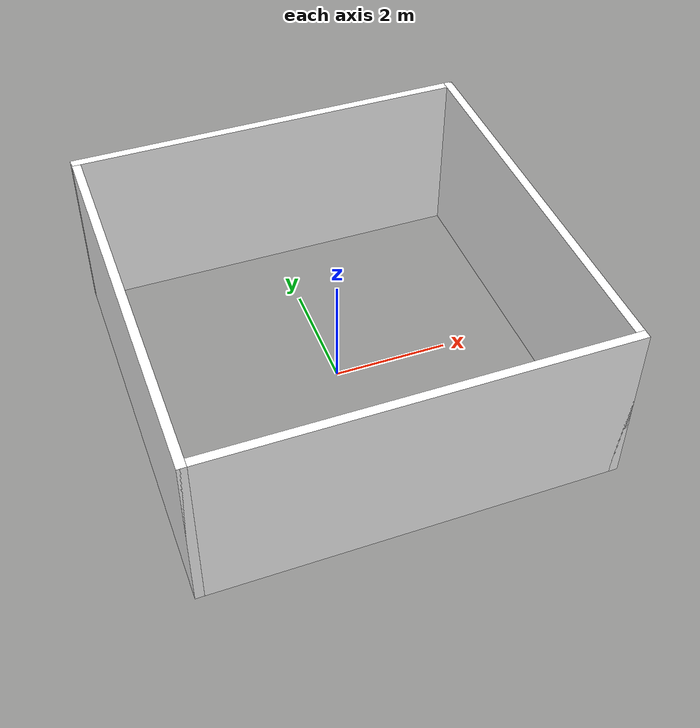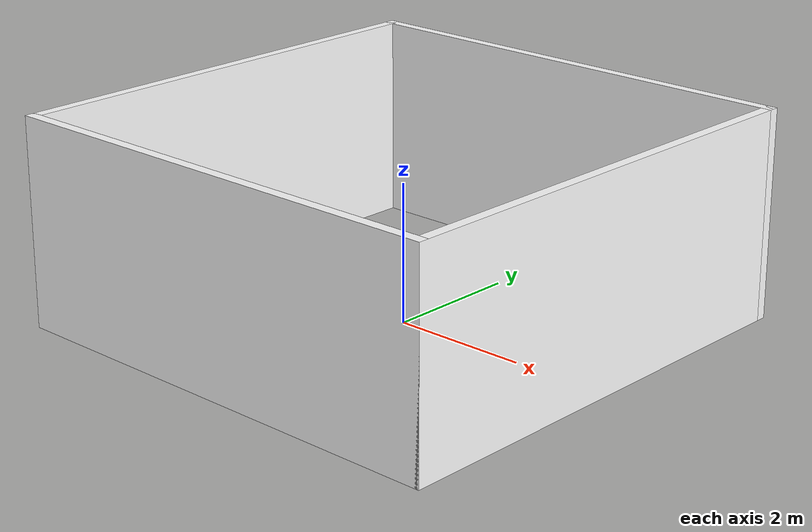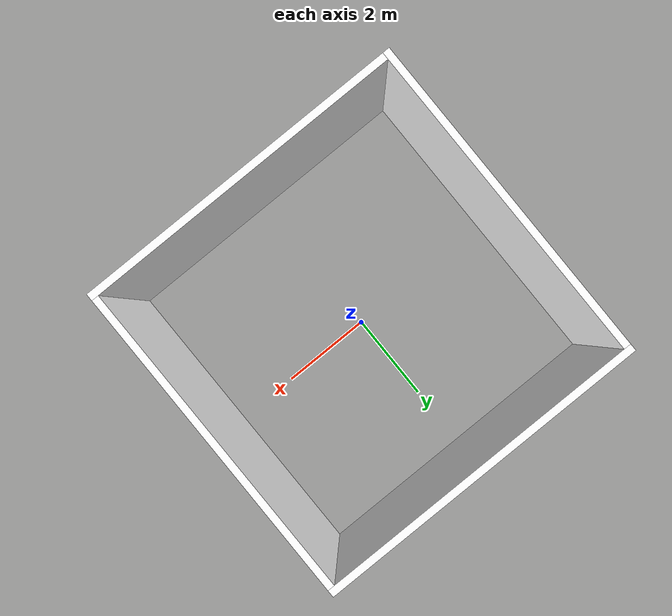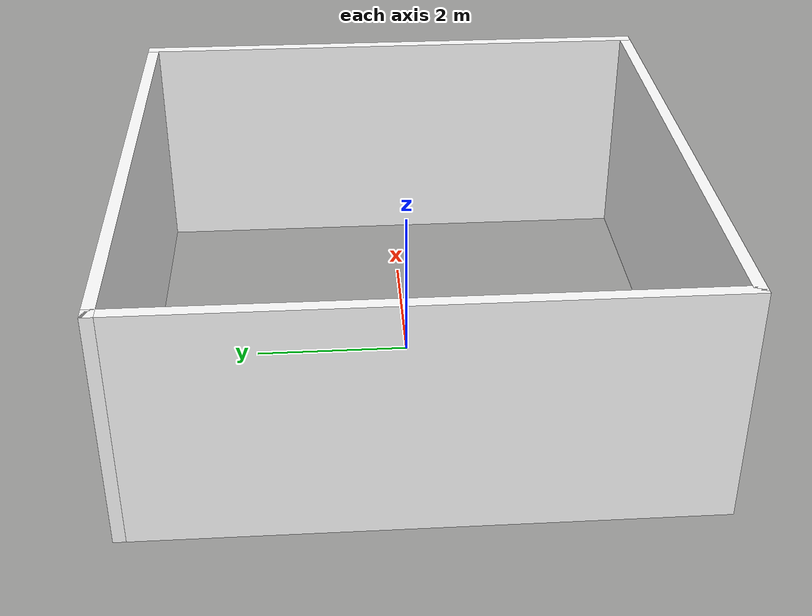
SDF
<?xml version='1.0'?>
<sdf version='1.6'>
  <model name='turtlebot3_square10'>
    <link name='Wall_0'>
      <pose frame=''>0 3.425 0 0 -0 0</pose>
      <self_collide>0</self_collide>
      <kinematic>0</kinematic>
      <gravity>1</gravity>
      <inertial>
        <mass>1</mass>
        <pose frame=''>0 0 0 0 -0 0</pose>
        <inertia>
          <ixx>1</ixx>
          <ixy>0</ixy>
          <ixz>0</ixz>
          <iyy>1</iyy>
          <iyz>0</iyz>
          <izz>1</izz>
        </inertia>
      </inertial>
      <visual name='Wall_0_Visual'>
        <pose frame=''>0 0 1.5 0 -0 0</pose>
        <geometry>
          <box>
            <size>7 0.15 3</size>
          </box>
        </geometry>
        <material>
          <script>
            <uri>model://turtlebot3_square10/materials/scripts</uri>
            <uri>model://turtlebot3_square10/materials/textures</uri>
            <name>BrickBox/Diffuse</name>
          </script>
          <ambient>1 1 1 1</ambient>
          <shader type='pixel'>
            <normal_map>__default__</normal_map>
          </shader>
          <diffuse>1 1 1 1</diffuse>
          <specular>0.2 0.2 0.2 1</specular>
          <emissive>0 0 0 1</emissive>
        </material>
        <transparency>0</transparency>
        <cast_shadows>1</cast_shadows>
      </visual>
      <collision name='Wall_0_Collision'>
        <laser_retro>0</laser_retro>
        <max_contacts>10</max_contacts>
        <pose frame=''>0 0 1.5 0 -0 0</pose>
        <geometry>
          <box>
            <size>7 0.15 3</size>
          </box>
        </geometry>
        <surface>
          <friction>
            <ode>
              <mu>1</mu>
              <mu2>1</mu2>
              <fdir1>0 0 0</fdir1>
              <slip1>0</slip1>
              <slip2>0</slip2>
            </ode>
            <torsional>
              <coefficient>1</coefficient>
              <patch_radius>0</patch_radius>
              <surface_radius>0</surface_radius>
              <use_patch_radius>1</use_patch_radius>
              <ode>
                <slip>0</slip>
              </ode>
            </torsional>
          </friction>
          <bounce>
            <restitution_coefficient>0</restitution_coefficient>
            <threshold>1e+06</threshold>
          </bounce>
          <contact>
            <collide_without_contact>0</collide_without_contact>
            <collide_without_contact_bitmask>1</collide_without_contact_bitmask>
            <collide_bitmask>1</collide_bitmask>
            <ode>
              <soft_cfm>0</soft_cfm>
              <soft_erp>0.2</soft_erp>
              <kp>1e+13</kp>
              <kd>1</kd>
              <max_vel>0.01</max_vel>
              <min_depth>0</min_depth>
            </ode>
            <bullet>
              <split_impulse>1</split_impulse>
              <split_impulse_penetration_threshold>-0.01</split_impulse_penetration_threshold>
              <soft_cfm>0</soft_cfm>
              <soft_erp>0.2</soft_erp>
              <kp>1e+13</kp>
              <kd>1</kd>
            </bullet>
          </contact>
        </surface>
      </collision>
    </link>
    <link name='Wall_2'>
      <pose frame=''>-3.425 0 0 0 0 -1.5708</pose>
      <self_collide>0</self_collide>
      <kinematic>0</kinematic>
      <gravity>1</gravity>
      <inertial>
        <mass>1</mass>
        <pose frame=''>0 0 0 0 -0 0</pose>
        <inertia>
          <ixx>1</ixx>
          <ixy>0</ixy>
          <ixz>0</ixz>
          <iyy>1</iyy>
          <iyz>0</iyz>
          <izz>1</izz>
        </inertia>
      </inertial>
      <visual name='Wall_2_Visual'>
        <pose frame=''>0 0 1.5 0 -0 0</pose>
        <geometry>
          <box>
            <size>7 0.15 3</size>
          </box>
        </geometry>
        <material>
         <script>
            <uri>model://turtlebot3_square10/materials/scripts</uri>
            <uri>model://turtlebot3_square10/materials/textures</uri>
            <name>BrickBox1/Diffuse</name>
          </script>
          <ambient>1 1 1 1</ambient>
          <shader type='pixel'>
            <normal_map>__default__</normal_map>
          </shader>
          <diffuse>1 1 1 1</diffuse>
          <specular>0.2 0.2 0.2 1</specular>
          <emissive>0 0 0 1</emissive>
        </material>
        <transparency>0</transparency>
        <cast_shadows>1</cast_shadows>
      </visual>
      <collision name='Wall_2_Collision'>
        <laser_retro>0</laser_retro>
        <max_contacts>10</max_contacts>
        <pose frame=''>0 0 1.5 0 -0 0</pose>
        <geometry>
          <box>
            <size>7 0.15 3</size>
          </box>
        </geometry>
        <surface>
          <friction>
            <ode>
              <mu>1</mu>
              <mu2>1</mu2>
              <fdir1>0 0 0</fdir1>
              <slip1>0</slip1>
              <slip2>0</slip2>
            </ode>
            <torsional>
              <coefficient>1</coefficient>
              <patch_radius>0</patch_radius>
              <surface_radius>0</surface_radius>
              <use_patch_radius>1</use_patch_radius>
              <ode>
                <slip>0</slip>
              </ode>
            </torsional>
          </friction>
          <bounce>
            <restitution_coefficient>0</restitution_coefficient>
            <threshold>1e+06</threshold>
          </bounce>
          <contact>
            <collide_without_contact>0</collide_without_contact>
            <collide_without_contact_bitmask>1</collide_without_contact_bitmask>
            <collide_bitmask>1</collide_bitmask>
            <ode>
              <soft_cfm>0</soft_cfm>
              <soft_erp>0.2</soft_erp>
              <kp>1e+13</kp>
              <kd>1</kd>
              <max_vel>0.01</max_vel>
              <min_depth>0</min_depth>
            </ode>
            <bullet>
              <split_impulse>1</split_impulse>
              <split_impulse_penetration_threshold>-0.01</split_impulse_penetration_threshold>
              <soft_cfm>0</soft_cfm>
              <soft_erp>0.2</soft_erp>
              <kp>1e+13</kp>
              <kd>1</kd>
            </bullet>
          </contact>
        </surface>
      </collision>
    </link>
    <link name='Wall_3'>
      <pose frame=''>0 -3.425 0 0 -0 0</pose>
      <self_collide>0</self_collide>
      <kinematic>0</kinematic>
      <gravity>1</gravity>
      <inertial>
        <mass>1</mass>
        <pose frame=''>0 0 0 0 -0 0</pose>
        <inertia>
          <ixx>1</ixx>
          <ixy>0</ixy>
          <ixz>0</ixz>
          <iyy>1</iyy>
          <iyz>0</iyz>
          <izz>1</izz>
        </inertia>
      </inertial>
      <visual name='Wall_3_Visual'>
        <pose frame=''>0 0 1.5 0 -0 0</pose>
        <geometry>
          <box>
            <size>7 0.15 3</size>
          </box>
        </geometry>
        <material>
          <script>
            <uri>model://turtlebot3_square10/materials/scripts</uri>
            <uri>model://turtlebot3_square10/materials/textures</uri>
            <name>BrickBox2/Diffuse</name>
          </script>
          <ambient>1 1 1 0</ambient>
          <shader type='pixel'>
            <normal_map>__default__</normal_map>
          </shader>
          <diffuse>1 1 1 0</diffuse>
          <specular>0.2 0.2 0.2 0</specular>
          <emissive>0 0 0 1</emissive>
        </material>
        <transparency>0</transparency>
        <cast_shadows>1</cast_shadows>
      </visual>
      <collision name='Wall_3_Collision'>
        <laser_retro>0</laser_retro>
        <max_contacts>10</max_contacts>
        <pose frame=''>0 0 1.5 0 -0 0</pose>
        <geometry>
          <box>
            <size>7 0.15 3</size>
          </box>
        </geometry>
        <surface>
          <friction>
            <ode>
              <mu>1</mu>
              <mu2>1</mu2>
              <fdir1>0 0 0</fdir1>
              <slip1>0</slip1>
              <slip2>0</slip2>
            </ode>
            <torsional>
              <coefficient>1</coefficient>
              <patch_radius>0</patch_radius>
              <surface_radius>0</surface_radius>
              <use_patch_radius>1</use_patch_radius>
              <ode>
                <slip>0</slip>
              </ode>
            </torsional>
          </friction>
          <bounce>
            <restitution_coefficient>0</restitution_coefficient>
            <threshold>1e+06</threshold>
          </bounce>
          <contact>
            <collide_without_contact>0</collide_without_contact>
            <collide_without_contact_bitmask>1</collide_without_contact_bitmask>
            <collide_bitmask>1</collide_bitmask>
            <ode>
              <soft_cfm>0</soft_cfm>
              <soft_erp>0.2</soft_erp>
              <kp>1e+13</kp>
              <kd>1</kd>
              <max_vel>0.01</max_vel>
              <min_depth>0</min_depth>
            </ode>
            <bullet>
              <split_impulse>1</split_impulse>
              <split_impulse_penetration_threshold>-0.01</split_impulse_penetration_threshold>
              <soft_cfm>0</soft_cfm>
              <soft_erp>0.2</soft_erp>
              <kp>1e+13</kp>
              <kd>1</kd>
            </bullet>
          </contact>
        </surface>
      </collision>
    </link>
    <link name='Wall_4'>
      <pose frame=''>3.425 0 0 0 -0 1.5708</pose>
      <self_collide>0</self_collide>
      <kinematic>0</kinematic>
      <gravity>1</gravity>
      <inertial>
        <mass>1</mass>
        <pose frame=''>0 0 0 0 -0 0</pose>
        <inertia>
          <ixx>1</ixx>
          <ixy>0</ixy>
          <ixz>0</ixz>
          <iyy>1</iyy>
          <iyz>0</iyz>
          <izz>1</izz>
        </inertia>
      </inertial>
      <visual name='Wall_4_Visual'>
        <pose frame=''>0 0 1.5 0 -0 0</pose>
        <geometry>
          <box>
            <size>7 0.15 3</size>
          </box>
        </geometry>
        <material>
          <script>
            <uri>model://turtlebot3_square10/materials/scripts</uri>
            <uri>model://turtlebot3_square10/materials/textures</uri>
            <name>BrickBox3/Diffuse</name>
          </script>
          <ambient>1 1 1 1</ambient>
          <shader type='pixel'>
            <normal_map>__default__</normal_map>
          </shader>
          <diffuse>1 1 1 1</diffuse>
          <specular>0.2 0.2 0.2 1</specular>
          <emissive>0 0 0 1</emissive>
        </material>
        <transparency>0</transparency>
        <cast_shadows>1</cast_shadows>
      </visual>
      <collision name='Wall_4_Collision'>
        <laser_retro>0</laser_retro>
        <max_contacts>10</max_contacts>
        <pose frame=''>0 0 1.5 0 -0 0</pose>
        <geometry>
          <box>
            <size>7 0.15 3</size>
          </box>
        </geometry>
        <surface>
          <friction>
            <ode>
              <mu>1</mu>
              <mu2>1</mu2>
              <fdir1>0 0 0</fdir1>
              <slip1>0</slip1>
              <slip2>0</slip2>
            </ode>
            <torsional>
              <coefficient>1</coefficient>
              <patch_radius>0</patch_radius>
              <surface_radius>0</surface_radius>
              <use_patch_radius>1</use_patch_radius>
              <ode>
                <slip>0</slip>
              </ode>
            </torsional>
          </friction>
          <bounce>
            <restitution_coefficient>0</restitution_coefficient>
            <threshold>1e+06</threshold>
          </bounce>
          <contact>
            <collide_without_contact>0</collide_without_contact>
            <collide_without_contact_bitmask>1</collide_without_contact_bitmask>
            <collide_bitmask>1</collide_bitmask>
            <ode>
              <soft_cfm>0</soft_cfm>
              <soft_erp>0.2</soft_erp>
              <kp>1e+13</kp>
              <kd>1</kd>
              <max_vel>0.01</max_vel>
              <min_depth>0</min_depth>
            </ode>
            <bullet>
              <split_impulse>1</split_impulse>
              <split_impulse_penetration_threshold>-0.01</split_impulse_penetration_threshold>
              <soft_cfm>0</soft_cfm>
              <soft_erp>0.2</soft_erp>
              <kp>1e+13</kp>
              <kd>1</kd>
            </bullet>
          </contact>
        </surface>
      </collision>
    </link>
    <static>1</static>
    <allow_auto_disable>1</allow_auto_disable>
  </model>
</sdf>
